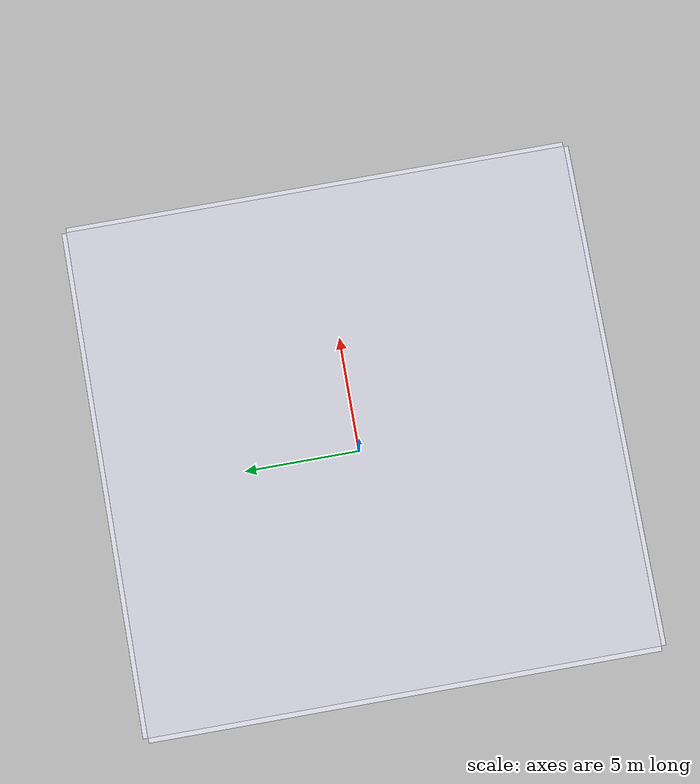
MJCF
<mujoco model="Stewart_only">
  <default>
    <joint limited="true" damping="0.01" armature="0.01" frictionloss="0.01" />
    <geom condim="4" contype="1" conaffinity="15" friction="0.9 0.2 0.2" solref="0.001 2" />
    <motor ctrllimited="true" />
    <equality solref="0.001 2" />
    <default class="visualgeom">
      <geom material="visualgeom" condim="1" contype="0" conaffinity="0" />
    </default>
  </default>

    <compiler angle="radian" meshdir="meshes" autolimits="true" />
    <option timestep="0.002" gravity="0 0 -9.81" wind="0 0 0" integrator="implicitfast"
        density="1.225"
        viscosity="1.8e-5" />

    <visual>
        <global realtime="1" />
        <quality shadowsize="16384" numslices="28" offsamples="4" />
        <headlight diffuse="1 1 1" specular="0.5 0.5 0.5" active="1" />
        <rgba fog="1 0 0 1" haze="1 1 1 1" />
    </visual>

  <asset>

     <!-- 地面纹理 -->
    <texture name="texplane" type="2d" builtin="checker" rgb1=".0 .0 .0" rgb2=".8 .8 .8" width="100" height="100" />
    <material name="matplane" reflectance="0.1" texture="texplane" texrepeat="20 20" texuniform="true" />

    <!-- 房间材质 -->
    <material name="wall_material" rgba="0.9 0.9 0.95 1" shininess="0.1" specular="0.1" />
    <material name="ceiling_material" rgba="0.85 0.85 0.9 1" shininess="0.1" specular="0.1" />
    <material name="window_material" rgba="0.6 0.8 1.0 0.4" shininess="0.8" specular="0.6" />
    <material name="furniture_material" rgba="0.6 0.4 0.2 1" shininess="0.3" specular="0.3" />

    <!-- 目标物体材质 -->
    <material name="red_target_material" rgba="1.0 0.0 0.0 1" shininess="0.3" specular="0.3" />

    <material name="default_material" rgba="0.7 0.7 0.7 1" />
    <mesh name="base_link.stl" file="base_link.stl" scale="0.001 0.001 0.001"/>
    <mesh name="X1bottom_1.stl" file="X1bottom_1.stl" scale="0.001 0.001 0.001"/>
    <mesh name="cylinder1_1.stl" file="cylinder1_1.stl" scale="0.001 0.001 0.001"/>
    <mesh name="rod1_1.stl" file="rod1_1.stl" scale="0.001 0.001 0.001"/>
    <mesh name="piston1_1.stl" file="piston1_1.stl" scale="0.001 0.001 0.001"/>
    <mesh name="X1top_1.stl" file="X1top_1.stl" scale="0.001 0.001 0.001"/>
    <mesh name="UJ1_1.stl" file="UJ1_1.stl" scale="0.001 0.001 0.001"/>
    <mesh name="TOP_1.stl" file="TOP_1.stl" scale="0.001 0.001 0.001"/>
    <mesh name="X6bottom_1.stl" file="X6bottom_1.stl" scale="0.001 0.001 0.001"/>
    <mesh name="cylinder6_1.stl" file="cylinder6_1.stl" scale="0.001 0.001 0.001"/>
    <mesh name="rod6_1.stl" file="rod6_1.stl" scale="0.001 0.001 0.001"/>
    <mesh name="piston6_1.stl" file="piston6_1.stl" scale="0.001 0.001 0.001"/>
    <mesh name="X6top_1.stl" file="X6top_1.stl" scale="0.001 0.001 0.001"/>
    <mesh name="UJ6_1.stl" file="UJ6_1.stl" scale="0.001 0.001 0.001"/>
    <mesh name="X5bottom_1.stl" file="X5bottom_1.stl" scale="0.001 0.001 0.001"/>
    <mesh name="cylinder5_1.stl" file="cylinder5_1.stl" scale="0.001 0.001 0.001"/>
    <mesh name="rod5_1.stl" file="rod5_1.stl" scale="0.001 0.001 0.001"/>
    <mesh name="piston5_1.stl" file="piston5_1.stl" scale="0.001 0.001 0.001"/>
    <mesh name="X5top_1.stl" file="X5top_1.stl" scale="0.001 0.001 0.001"/>
    <mesh name="UJ5_1.stl" file="UJ5_1.stl" scale="0.001 0.001 0.001"/>
    <mesh name="X2bottom_1.stl" file="X2bottom_1.stl" scale="0.001 0.001 0.001"/>
    <mesh name="cylinder2_1.stl" file="cylinder2_1.stl" scale="0.001 0.001 0.001"/>
    <mesh name="rod2_1.stl" file="rod2_1.stl" scale="0.001 0.001 0.001"/>
    <mesh name="piston2_1.stl" file="piston2_1.stl" scale="0.001 0.001 0.001"/>
    <mesh name="X2top_1.stl" file="X2top_1.stl" scale="0.001 0.001 0.001"/>
    <mesh name="UJ2_1.stl" file="UJ2_1.stl" scale="0.001 0.001 0.001"/>
    <mesh name="X4bottom_1.stl" file="X4bottom_1.stl" scale="0.001 0.001 0.001"/>
    <mesh name="cylinder4_1.stl" file="cylinder4_1.stl" scale="0.001 0.001 0.001"/>
    <mesh name="rod4_1.stl" file="rod4_1.stl" scale="0.001 0.001 0.001"/>
    <mesh name="piston4_1.stl" file="piston4_1.stl" scale="0.001 0.001 0.001"/>
    <mesh name="X4top_1.stl" file="X4top_1.stl" scale="0.001 0.001 0.001"/>
    <mesh name="UJ4_1.stl" file="UJ4_1.stl" scale="0.001 0.001 0.001"/>
    <mesh name="X3bottom_1.stl" file="X3bottom_1.stl" scale="0.001 0.001 0.001"/>
    <mesh name="cylinder3_1.stl" file="cylinder3_1.stl" scale="0.001 0.001 0.001"/>
    <mesh name="rod3_1.stl" file="rod3_1.stl" scale="0.001 0.001 0.001"/>
    <mesh name="piston3_1.stl" file="piston3_1.stl" scale="0.001 0.001 0.001"/>
    <mesh name="X3top_1.stl" file="X3top_1.stl" scale="0.001 0.001 0.001"/>
    <mesh name="UJ3_1.stl" file="UJ3_1.stl" scale="0.001 0.001 0.001"/>
  </asset>

  <worldbody>
    <!-- 房间光照系统 -->
    <light directional="true" diffuse="0.6 0.6 0.6" specular="0.2 0.2 0.2"
           pos="0 0 6.0" dir="0 0 -1" castshadow="true" />
    <light directional="true" diffuse="0.4 0.4 0.4" specular="0.1 0.1 0.1"
           pos="5 5 4.0" dir="-1 -1 -1" castshadow="false" />
    <light directional="true" diffuse="0.3 0.3 0.3" specular="0.1 0.1 0.1"
           pos="-5 -5 4.0" dir="1 1 -1" castshadow="false" />

    <!-- 地面 -->
    <geom name="ground" type="plane" pos="0 0 0" size="10 10 0.001"
          quat="1 0 0 0" material="matplane" condim="3" contype="1" conaffinity="65535" />

    <!-- 房间结构 -->
    <!-- 墙壁 -->
    <!-- 前墙 (Y=10) -->
    <geom name="wall_front" type="box" size="10 0.2 3" pos="0 10 3"
          material="wall_material" contype="2" conaffinity="1" />
    <!-- 后墙 (Y=-10) -->
    <geom name="wall_back" type="box" size="10 0.2 3" pos="0 -10 3"
          material="wall_material" contype="2" conaffinity="1" />
    <!-- 左墙 (X=-10) -->
    <geom name="wall_left" type="box" size="0.2 10 3" pos="-10 0 3"
          material="wall_material" contype="2" conaffinity="1" />
    <!-- 右墙 (X=10) -->
    <geom name="wall_right" type="box" size="0.2 10 3" pos="10 0 3"
          material="wall_material" contype="2" conaffinity="1" />

    <!-- 天花板 -->
    <geom name="ceiling" type="box" size="10 10 0.1" pos="0 0 6"
          material="ceiling_material" contype="2" conaffinity="1" />

        <!-- 随机目标物体 -->
    <body name="target_object" pos="0 0 4">
      <geom name="red_target" type="box" size="0.08 0.05 0.05"
            material="red_target_material" contype="4" conaffinity="4" />

    </body>

        <body name="base" pos="0.0 0.0 0.0" quat="1.0 0.0 0.0 0.0">
          <inertial pos="2.3255814076482495e-11 -1.1937212521199739e-11 0.013288962255547656" quat="1.0 0.0 0.0 0.0" mass="13.757667475145922" diaginertia="0.217974 0.217974 0.434077" />
          <geom pos="0 0 0" quat="1.0 0.0 0.0 0.0" material="default_material" type="mesh" mesh="base_link.stl" contype="2" conaffinity="1"/>
          <body name="X1bottom_1" pos="-0.160375 -0.15639 0.064756" quat="1.0 0.0 0.0 0.0">
            <joint name="r_xb1" type="hinge" range="-0.785398 0.785398" axis="-0.5 -0.866025 -0.0" />
            <inertial pos="0.01275003478154274 0.02208392696742542 -4.072401300903028e-07" quat="1.0 0.0 0.0 0.0" mass="0.015369342112821465" diaginertia="2e-06 2e-06 3e-06" />
            <geom pos="0.160375 0.15639 -0.064756" quat="1.0 0.0 0.0 0.0" material="default_material" type="mesh" mesh="X1bottom_1.stl" contype="0" conaffinity="0" />
            <body name="cylinder1_1" pos="0.032934 0.010431 -0.010949" quat="1.0 0.0 0.0 0.0">
              <joint name="r_xb_rod1" type="hinge" range="-0.785398 0.785398" axis="0.783838 -0.452549 -0.425202" />
              <inertial pos="0.02729482532372013 -0.016329820457659128 0.12825573678482122" quat="1.0 0.0 0.0 0.0" mass="1.0834595971642158" diaginertia="0.00397 0.004331 0.001152" />
              <geom pos="0.127441 0.145959 -0.053807" quat="1.0 0.0 0.0 0.0" material="default_material" type="mesh" mesh="cylinder1_1.stl" contype="0" conaffinity="0" />
              <body name="rod1_1" pos="0.067736 -0.040165 0.228176" quat="1.0 0.0 0.0 0.0">
                <joint name="s1" type="slide" range="0.0 0.19" axis="0.366326 -0.215903 0.905092" />
                <inertial pos="-0.0363119660977582 0.02140153438053846 -0.08971792919781321" quat="1.0 0.0 0.0 0.0" mass="0.2833716573537993" diaginertia="0.000826 0.000908 0.000184" />
                <geom pos="0.059705 0.186124 -0.281983" quat="1.0 0.0 0.0 0.0" material="default_material" type="mesh" mesh="rod1_1.stl" contype="0" conaffinity="0" />
                <body name="piston1_1" pos="0.000321 -0.000189 0.000791" quat="1.0 0.0 0.0 0.0">
                  <joint name="r_rod1" type="hinge" range="0.0 6.283185" axis="0.366326 -0.215903 0.905092" />
                  <inertial pos="0.003260719383217446 -0.00192086747489148 0.008055557047720485" quat="1.0 0.0 0.0 0.0" mass="0.08578443099201062" diaginertia="1.9e-05 2e-05 2.7e-05" />
                  <geom pos="0.059384 0.186313 -0.282774" quat="1.0 0.0 0.0 0.0" material="default_material" type="mesh" mesh="piston1_1.stl" contype="0" conaffinity="0" />
                  <body name="X1top_1" pos="0.036216 0.003685 0.030422" quat="1.0 0.0 0.0 0.0">
                    <joint name="r_rod_xt1" type="hinge" range="-0.785398 0.785398" axis="-0.845561 -0.483234 0.226959" />
                    <inertial pos="-0.021561342143433596 -0.012322044617543215 0.0057870217842545535" quat="1.0 0.0 0.0 0.0" mass="0.015369342112821583" diaginertia="2e-06 2e-06 4e-06" />
                    <geom pos="0.023168 0.182628 -0.313196" quat="1.0 0.0 0.0 0.0" material="default_material" type="mesh" mesh="X1top_1.stl" contype="0" conaffinity="0" />
                    <body name="UJ1_1" pos="-0.008779 -0.034675 0.005815" quat="1.0 0.0 0.0 0.0">
                      <joint name="r_xt1" type="hinge" range="0.0 6.283185" axis="0.496404 -0.868091 0.001097" />
                      <inertial pos="-0.012837420559777761 0.022361614937716018 0.030940336511158628" quat="1.0 0.0 0.0 0.0" mass="0.08446437141832064" diaginertia="1.9e-05 1.7e-05 2.8e-05" />
                      <geom pos="0.031947 0.217303 -0.319011" quat="1.0 0.0 0.0 0.0" material="default_material" type="mesh" mesh="UJ1_1.stl" contype="64" conaffinity="64" />
                      <body name="TOP_1" pos="-0.012852 0.022363 0.039728" quat="1.0 0.0 0.0 0.0">
                        <inertial pos="0.04328903595379507 0.19482493931376896 0.010581548215173764" quat="1.0 0.0 0.0 0.0" mass="13.182708498536908" diaginertia="0.206266 0.206265 0.411168" />
                        <geom pos="0.044799 0.19494 -0.358739" quat="1.0 0.0 0.0 0.0" material="default_material" type="mesh" mesh="TOP_1.stl" contype="64" conaffinity="64" />
                        <camera name="camera" pos="0.03295 0.1973 0" euler="0 3.1415926 0" mode="fixed" fovy="45"/>
                      </body>
                    </body>
                  </body>
                </body>
              </body>
            </body>
          </body>
          <body name="X2bottom_1" pos="-0.202875 -0.082778 0.064756" quat="1.0 0.0 0.0 0.0">
            <joint name="r_xb2" type="hinge" range="-0.785398 0.785398" axis="-0.5 -0.866025 0.0" />
            <inertial pos="0.012750057742457827 0.022084073032612075 -4.07240119418284e-07" quat="1.0 0.0 0.0 0.0" mass="0.01536934211282146" diaginertia="2e-06 2e-06 4e-06" />
            <geom name="X2bottom_1_visual_0" pos="0.202875 0.082778 -0.064756" quat="1.0 0.0 0.0 0.0" material="default_material" type="mesh" mesh="X2bottom_1.stl" contype="0" conaffinity="0" />
            <body name="cylinder2_1" pos="0.034413 0.009577 0.006111" quat="1.0 0.0 0.0 0.0">
              <joint name="r_xb_rod2" type="hinge" range="-0.785398 0.785398" axis="0.841279 -0.485713 0.237344" />
              <inertial pos="-0.022200241098937062 0.0686570498281845 0.11070095070557585" quat="1.0 0.0 0.0 0.0" mass="1.083459599703058" diaginertia="0.004522 0.003751 0.001181" />
              <geom name="cylinder2_1_visual_0" pos="0.168462 0.073201 -0.070867" quat="1.0 0.0 0.0 0.0" material="default_material" type="mesh" mesh="cylinder2_1.stl" contype="0" conaffinity="0" />
              <body name="rod2_1" pos="-0.022658 0.116484 0.210199" quat="1.0 0.0 0.0 0.0">
                <joint name="s2" type="slide" range="0.0 0.19" axis="-0.004145 0.433229 0.901274" />
                <inertial pos="0.00040765407980625223 -0.0425838018149945 -0.08859030306524057" quat="1.0 0.0 0.0 0.0" mass="0.2833716573537998" diaginertia="0.000952 0.000776 0.00019" />
                <geom name="rod2_1_visual_0" pos="0.19112 -0.043283 -0.281066" quat="1.0 0.0 0.0 0.0" material="default_material" type="mesh" mesh="rod2_1.stl" contype="0" conaffinity="0" />
                <body name="piston2_1" pos="-7e-06 0.000739 0.001537" quat="1.0 0.0 0.0 0.0">
                  <joint name="r_rod2" type="hinge" range="0.0 6.283185" axis="-0.004145 0.433229 0.901274" />
                  <inertial pos="-3.6747621563193444e-05 0.00385505605944253 0.008022004528809967" quat="1.0 0.0 0.0 0.0" mass="0.08578414622058635" diaginertia="2e-05 1.9e-05 2.6e-05" />
                  <geom name="piston2_1_visual_0" pos="0.191127 -0.044022 -0.282603" quat="1.0 0.0 0.0 0.0" material="default_material" type="mesh" mesh="piston2_1.stl" contype="0" conaffinity="0" />
                  <body name="X2top_1" pos="-5.1e-05 0.040314 0.025009" quat="1.0 0.0 0.0 0.0">
                    <joint name="r_rod_xt2" type="hinge" range="-0.785398 0.785398" axis="-0.004501 -0.901281 0.433212" />
                    <inertial pos="-0.00011466195212661567 -0.022982312625086758 0.011047143465836295" quat="1.0 0.0 0.0 0.0" mass="0.015369342112821335" diaginertia="2e-06 2e-06 3e-06" />
                    <geom name="X2top_1_visual_0" pos="0.191178 -0.084336 -0.307612" quat="1.0 0.0 0.0 0.0" material="default_material" type="mesh" mesh="X2top_1.stl" contype="0" conaffinity="0" />
                    <body name="UJ2_1" pos="-0.025864 -0.022876 0.011002" quat="1.0 0.0 0.0 0.0">
                      <joint name="r_xt2" type="hinge" range="0.0 6.283185" axis="-0.99999 0.004146 -0.001764" />
                      <inertial pos="0.025693864744190664 -9.844998390469428e-05 0.031013457675736433" quat="1.0 0.0 0.0 0.0" mass="0.08446437149882718" diaginertia="1.7e-05 1.9e-05 2.8e-05" />
                      <geom name="UJ2_1_visual_0" pos="0.217042 -0.06146 -0.318614" quat="1.0 0.0 0.0 0.0" material="default_material" type="mesh" mesh="UJ2_1.stl" contype="64" conaffinity="64" />
                    </body>
                  </body>
                </body>
              </body>
            </body>
          </body>
          <body name="X3bottom_1" pos="-0.02975 0.172916 0.064756" quat="1.0 0.0 0.0 0.0">
            <joint name="r_xb3" type="hinge" range="-0.785398 0.785398" axis="0.5 -0.866025 0.0" />
            <inertial pos="-0.01274998851950876 0.02208400662826518 -4.072401302013251e-07" quat="1.0 0.0 0.0 0.0" mass="0.015369342112821387" diaginertia="2e-06 2e-06 3e-06" />
            <geom name="X3bottom_1_visual_0" pos="0.02975 -0.172916 -0.064756" quat="1.0 0.0 0.0 0.0" material="default_material" type="mesh" mesh="X3bottom_1.stl" contype="0" conaffinity="0" />
            <body name="cylinder3_1" pos="0.007354 0.033691 0.011142" quat="1.0 0.0 0.0 0.0">
              <joint name="r_xb_rod3" type="hinge" range="-0.785398 0.785398" axis="0.78075 0.450766 0.43271" />
              <inertial pos="-0.06886834961262803 -0.039309713367164906 0.10570290713184599" quat="1.0 0.0 0.0 0.0" mass="1.0834597856232793" diaginertia="0.00394 0.004335 0.001178" />
              <geom name="cylinder3_1_visual_0" pos="0.022396 -0.206607 -0.075898" quat="1.0 0.0 0.0 0.0" material="default_material" type="mesh" mesh="cylinder3_1.stl" contype="0" conaffinity="0" />
              <body name="rod3_1" pos="-0.110405 -0.062906 0.20523" quat="1.0 0.0 0.0 0.0">
                <joint name="s3" type="slide" range="0.0 0.19" axis="-0.376245 -0.213742 0.901529" />
                <inertial pos="0.03698945499219167 0.021013065163081268 -0.08863127807602841" quat="1.0 0.0 0.0 0.0" mass="0.2833716573537997" diaginertia="0.000819 0.000909 0.00019" />
                <geom name="rod3_1_visual_0" pos="0.132801 -0.143701 -0.281128" quat="1.0 0.0 0.0 0.0" material="default_material" type="mesh" mesh="rod3_1.stl" contype="0" conaffinity="0" />
                <body name="piston3_1" pos="-0.000635 -0.000361 0.001522" quat="1.0 0.0 0.0 0.0">
                  <joint name="r_rod3" type="hinge" range="0.0 6.283185" axis="-0.376245 -0.213742 0.901529" />
                  <inertial pos="-0.003348642128974705 -0.001903364795347251 0.008023117770736776" quat="1.0 0.0 0.0 0.0" mass="0.08578406699699544" diaginertia="2.1e-05 1.8e-05 2.7e-05" />
                  <geom name="piston3_1_visual_0" pos="0.133436 -0.14334 -0.28265" quat="1.0 0.0 0.0 0.0" material="default_material" type="mesh" mesh="piston3_1.stl" contype="0" conaffinity="0" />
                  <body name="X3top_1" pos="-0.014959 0.016252 0.041985" quat="1.0 0.0 0.0 0.0">
                    <joint name="r_rod_xt3" type="hinge" range="-0.785398 0.785398" axis="-0.003623 -0.97268 -0.232123" />
                    <inertial pos="-9.28858073003247e-05 -0.024803007598659416 -0.0059191862387001914" quat="1.0 0.0 0.0 0.0" mass="0.015369342112821555" diaginertia="2e-06 2e-06 4e-06" />
                    <geom name="X3top_1_visual_0" pos="0.148395 -0.159592 -0.324635" quat="1.0 0.0 0.0 0.0" material="default_material" type="mesh" mesh="X3top_1.stl" contype="0" conaffinity="0" />
                    <body name="UJ3_1" pos="0.025657 -0.02491 -0.005874" quat="1.0 0.0 0.0 0.0">
                      <joint name="r_xt3" type="hinge" range="0.0 6.283185" axis="0.99999 -0.004146 0.001764" />
                      <inertial pos="-0.025803583885874712 0.00011496804616903389 0.030923131071302012" quat="1.0 0.0 0.0 0.0" mass="0.08446437149876586" diaginertia="1.7e-05 1.9e-05 2.8e-05" />
                      <geom name="UJ3_1_visual_0" pos="0.122738 -0.134682 -0.318761" quat="1.0 0.0 0.0 0.0" material="default_material" type="mesh" mesh="UJ3_1.stl" contype="64" conaffinity="64" />
                    </body>
                  </body>
                </body>
              </body>
            </body>
          </body>
          <body name="X4bottom_1" pos="0.05525 0.172916 0.064756" quat="1.0 0.0 0.0 0.0">
            <joint name="r_xb4" type="hinge" range="-0.785398 0.785398" axis="0.5 -0.866025 -0.0" />
            <inertial pos="-0.012750011480423325 0.022083993371774968 -4.0724011886317246e-07" quat="1.0 0.0 0.0 0.0" mass="0.01536934211282148" diaginertia="2e-06 2e-06 4e-06" />
            <geom name="X4bottom_1_visual_0" pos="-0.05525 -0.172916 -0.064756" quat="1.0 0.0 0.0 0.0" material="default_material" type="mesh" mesh="X4bottom_1.stl" contype="0" conaffinity="0" />
            <body name="cylinder4_1" pos="0.008963 0.03462 -0.00587" quat="1.0 0.0 0.0 0.0">
              <joint name="r_xb_rod4" type="hinge" range="-0.785398 0.785398" axis="0.843228 0.486838 -0.227936" />
              <inertial pos="0.026240778221358257 -0.04079286613222788 0.12291755682136629" quat="1.0 0.0 0.0 0.0" mass="1.0834593902746585" diaginertia="0.003958 0.004327 0.001167" />
              <geom name="cylinder4_1_visual_0" pos="-0.064213 -0.207536 -0.058886" quat="1.0 0.0 0.0 0.0" material="default_material" type="mesh" mesh="cylinder4_1.stl" contype="0" conaffinity="0" />
              <body name="rod4_1" pos="0.067087 -0.064862 0.222617" quat="1.0 0.0 0.0 0.0">
                <joint name="s4" type="slide" range="0.0 0.19" axis="0.36999 -0.218018 0.903092" />
                <inertial pos="-0.03634169091616525 0.02141475285206132 -0.08870439058730761" quat="1.0 0.0 0.0 0.0" mass="0.28337165735379954" diaginertia="0.000823 0.000907 0.000187" />
                <geom name="rod4_1_visual_0" pos="-0.1313 -0.142674 -0.281503" quat="1.0 0.0 0.0 0.0" material="default_material" type="mesh" mesh="rod4_1.stl" contype="0" conaffinity="0" />
                <body name="piston4_1" pos="0.000657 -0.000387 0.001605" quat="1.0 0.0 0.0 0.0">
                  <joint name="r_rod4" type="hinge" range="0.0 6.283185" axis="0.36999 -0.218018 0.903092" />
                  <inertial pos="0.0032926577328955264 -0.0019400363790381403 0.008037838079846149" quat="1.0 0.0 0.0 0.0" mass="0.08578412180440002" diaginertia="1.9e-05 2e-05 2.6e-05" />
                  <geom name="piston4_1_visual_0" pos="-0.131957 -0.142287 -0.283108" quat="1.0 0.0 0.0 0.0" material="default_material" type="mesh" mesh="piston4_1.stl" contype="0" conaffinity="0" />
                  <body name="X4top_1" pos="0.034701 -0.020313 0.025178" quat="1.0 0.0 0.0 0.0">
                    <joint name="r_rod_xt4" type="hinge" range="-0.785398 0.785398" axis="-0.780368 0.454538 0.429443" />
                    <inertial pos="-0.019898963252462376 0.01159097769330164 0.010950537929455939" quat="1.0 0.0 0.0 0.0" mass="0.015369342112821675" diaginertia="2e-06 2e-06 3e-06" />
                    <geom name="X4top_1_visual_0" pos="-0.166658 -0.121974 -0.308286" quat="1.0 0.0 0.0 0.0" material="default_material" type="mesh" mesh="X4top_1.stl" contype="0" conaffinity="0" />
                    <body name="UJ4_1" pos="-0.006932 0.033838 0.010968" quat="1.0 0.0 0.0 0.0">
                      <joint name="r_xt4" type="hinge" range="0.0 6.283185" axis="0.503586 0.863945 0.000667" />
                      <inertial pos="-0.013021154103656923 -0.022238306259387025 0.030950854232405622" quat="1.0 0.0 0.0 0.0" mass="0.08446437135502799" diaginertia="1.9e-05 1.7e-05 2.8e-05" />
                      <geom name="UJ4_1_visual_0" pos="-0.159726 -0.155812 -0.319254" quat="1.0 0.0 0.0 0.0" material="default_material" type="mesh" mesh="UJ4_1.stl" contype="64" conaffinity="64" />
                    </body>
                  </body>
                </body>
              </body>
            </body>
          </body>
          <body name="X5bottom_1" pos="0.215625 -0.060694 0.064756" quat="1.0 0.0 0.0 0.0">
            <joint name="r_xb5" type="hinge" range="-0.785398 0.785398" axis="1.0 -0.0 -0.0" />
            <inertial pos="-0.025500046262034837 6.640431129967261e-08 -4.072401355581512e-07" quat="1.0 0.0 0.0 0.0" mass="0.015369342112821526" diaginertia="2e-06 2e-06 3e-06" />
            <geom name="X5bottom_1_visual_0" pos="-0.215625 0.060694 -0.064756" quat="1.0 0.0 0.0 0.0" material="default_material" type="mesh" mesh="X5bottom_1.stl" contype="0" conaffinity="0" />
            <body name="cylinder5_1" pos="-0.0255 -0.023275 0.011014" quat="1.0 0.0 0.0 0.0">
              <joint name="r_xb_rod5" type="hinge" range="-0.785398 0.785398" axis="-0.0 -0.903898 0.427748" />
              <inertial pos="-0.0005391942218705703 0.07871427363633557 0.1061369773985035" quat="1.0 0.0 0.0 0.0" mass="1.0834593359661664" diaginertia="0.004524 0.003769 0.001161" />
              <geom name="cylinder5_1_visual_0" pos="-0.190125 0.083969 -0.07577" quat="1.0 0.0 0.0 0.0" material="default_material" type="mesh" mesh="cylinder5_1.stl" contype="0" conaffinity="0" />
              <body name="rod5_1" pos="-0.000998 0.125936 0.205924" quat="1.0 0.0 0.0 0.0">
                <joint name="s5" type="slide" range="0.0 0.19" axis="-0.00416 0.427745 0.90389" />
                <inertial pos="0.00040876764670991217 -0.04207635461802559 -0.0889138885284477" quat="1.0 0.0 0.0 0.0" mass="0.28337165735379943" diaginertia="0.000952 0.00078 0.000186" />
                <geom name="rod5_1_visual_0" pos="-0.189127 -0.041967 -0.281694" quat="1.0 0.0 0.0 0.0" material="default_material" type="mesh" mesh="rod5_1.stl" contype="0" conaffinity="0" />
                <body name="piston5_1" pos="-7e-06 0.000698 0.001475" quat="1.0 0.0 0.0 0.0">
                  <joint name="r_rod5" type="hinge" range="0.0 6.283185" axis="-0.00416 0.427745 0.90389" />
                  <inertial pos="-3.796842945222312e-05 0.003807538312228631 0.00804468407875164" quat="1.0 0.0 0.0 0.0" mass="0.08578423958035213" diaginertia="1.8e-05 2.1e-05 2.7e-05" />
                  <geom name="piston5_1_visual_0" pos="-0.18912 -0.042665 -0.283169" quat="1.0 0.0 0.0 0.0" material="default_material" type="mesh" mesh="piston5_1.stl" contype="0" conaffinity="0" />
                  <body name="X5top_1" pos="0.021242 0.004629 0.042167" quat="1.0 0.0 0.0 0.0">
                    <joint name="r_rod_xt5" type="hinge" range="-0.785398 0.785398" axis="-0.83956 0.489554 -0.235533" />
                    <inertial pos="-0.021408625059915254 0.012483273926971863 -0.00600622023844799" quat="1.0 0.0 0.0 0.0" mass="0.015369342112821502" diaginertia="2e-06 2e-06 4e-06" />
                    <geom name="X5top_1_visual_0" pos="-0.210362 -0.047294 -0.325336" quat="1.0 0.0 0.0 0.0" material="default_material" type="mesh" mesh="X5top_1.stl" contype="0" conaffinity="0" />
                    <body name="UJ5_1" pos="-0.008441 0.03473 -0.005989" quat="1.0 0.0 0.0 0.0">
                      <joint name="r_xt5" type="hinge" range="0.0 6.283185" axis="0.503586 0.863945 0.000667" />
                      <inertial pos="-0.013022605591247183 -0.022239603834112852 0.030951095080068047" quat="1.0 0.0 0.0 0.0" mass="0.08446437135496666" diaginertia="1.9e-05 1.7e-05 2.8e-05" />
                      <geom name="UJ5_1_visual_0" pos="-0.201921 -0.082024 -0.319347" quat="1.0 0.0 0.0 0.0" material="default_material" type="mesh" mesh="UJ5_1.stl" contype="64" conaffinity="64" />
                    </body>
                  </body>
                </body>
              </body>
            </body>
          </body>
          <body name="X6bottom_1" pos="0.173125 -0.134306 0.064756" quat="1.0 0.0 0.0 0.0">
            <joint name="r_xb6" type="hinge" range="-0.785398 0.785398" axis="1.0 -0.0 0.0" />
            <inertial pos="-0.025500046262033477 -6.640439273453147e-08 -4.0724012444204316e-07" quat="1.0 0.0 0.0 0.0" mass="0.015369342112821434" diaginertia="2e-06 2e-06 4e-06" />
            <geom name="X6bottom_1_visual_0" pos="-0.173125 0.134306 -0.064756" quat="1.0 0.0 0.0 0.0" material="default_material" type="mesh" mesh="X6bottom_1.stl" contype="0" conaffinity="0" />
            <body name="cylinder6_1" pos="-0.0255 0.025035 0.006026" quat="1.0 0.0 0.0 0.0">
              <joint name="r_xb_rod6" type="hinge" range="-0.785398 0.785398" axis="0.0 0.972225 0.234048" />
              <inertial pos="-0.04936437063232299 -0.05308323327299884 0.11048411160322401" quat="1.0 0.0 0.0 0.0" mass="1.083459541527402" diaginertia="0.003927 0.004328 0.001198" />
              <geom name="cylinder6_1_visual_0" pos="-0.147625 0.109271 -0.070782" quat="1.0 0.0 0.0 0.0" material="default_material" type="mesh" mesh="cylinder6_1.stl" contype="0" conaffinity="0" />
              <body name="rod6_1" pos="-0.091412 -0.076974 0.209726" quat="1.0 0.0 0.0 0.0">
                <joint name="s6" type="slide" range="0.0 0.19" axis="-0.380874 -0.216407 0.898945" />
                <inertial pos="0.037383047951974016 0.021240492770698255 -0.08823245154948317" quat="1.0 0.0 0.0 0.0" mass="0.2833716573537994" diaginertia="0.000816 0.000908 0.000194" />
                <geom name="rod6_1_visual_0" pos="-0.056213 0.186245 -0.280508" quat="1.0 0.0 0.0 0.0" material="default_material" type="mesh" mesh="rod6_1.stl" contype="0" conaffinity="0" />
                <body name="piston6_1" pos="-0.000704 -0.0004 0.001662" quat="1.0 0.0 0.0 0.0">
                  <joint name="r_rod6" type="hinge" range="0.0 6.283185" axis="-0.380874 -0.216407 0.898945" />
                  <inertial pos="-0.0033895159992465007 -0.0019258741237710708 0.008001250404574778" quat="1.0 0.0 0.0 0.0" mass="0.08578421036573615" diaginertia="1.9e-05 2e-05 2.6e-05" />
                  <geom name="piston6_1_visual_0" pos="-0.055509 0.186645 -0.28217" quat="1.0 0.0 0.0 0.0" material="default_material" type="mesh" mesh="piston6_1.stl" contype="0" conaffinity="0" />
                  <body name="X6top_1" pos="0.004656 0.002732 0.047133" quat="1.0 0.0 0.0 0.0">
                    <joint name="r_rod_xt6" type="hinge" range="-0.785398 0.785398" axis="-0.780129 -0.446658 -0.438059" />
                    <inertial pos="-0.019893465178586138 -0.011389699074627252 -0.011170064502357191" quat="1.0 0.0 0.0 0.0" mass="0.015369342112822157" diaginertia="2e-06 2e-06 3e-06" />
                    <geom name="X6top_1_visual_0" pos="-0.060165 0.183913 -0.329303" quat="1.0 0.0 0.0 0.0" material="default_material" type="mesh" mesh="X6top_1.stl" contype="0" conaffinity="0" />
                    <body name="UJ6_1" pos="-0.007111 -0.033743 -0.011142" quat="1.0 0.0 0.0 0.0">
                      <joint name="r_xt6" type="hinge" range="0.0 6.283185" axis="0.496404 -0.868091 0.001097" />
                      <inertial pos="-0.012837553348221412 0.022360664031001204 0.03148874152476355" quat="1.0 0.0 0.0 0.0" mass="0.089765809021081" diaginertia="2e-05 1.9e-05 3e-05" />
                      <geom name="UJ6_1_visual_0" pos="-0.053054 0.217656 -0.318161" quat="1.0 0.0 0.0 0.0" material="default_material" type="mesh" mesh="UJ6_1.stl" contype="64" conaffinity="64" />
                    </body>
                  </body>
                </body>
              </body>
            </body>
          </body>
        </body>

  </worldbody>
  <equality>
    <weld name="rigid2" body1="UJ2_1" body2="TOP_1" relpose="0.169691815 -0.2580476 0.04 1 0 0 0"/>
    <weld name="rigid3" body1="UJ3_1" body2="TOP_1" relpose="0.08078585061 -0.32854378 0.04 1 0 0 0"/>
    <weld name="rigid4" body1="UJ4_1" body2="TOP_1" relpose="-0.208484475 -0.3507224248 0.04 1 0 0 0"/>
    <weld name="rigid5" body1="UJ5_1" body2="TOP_1" relpose="-0.242636273 -0.2759510036 0.038 1 0 0 0"/>
    <weld name="rigid6" body1="UJ6_1" body2="TOP_1" relpose="-0.099102147 0.019884 0.04 1 0 0 0"/>
  </equality>

<actuator>
    <!-- 增益足够大才会稳定，TODO:为什么？s5存在问题，与TOP分离 -->
    <position kp="10000.0" kv="0.1" name="s1_trans" joint="s1" ctrlrange="-0.0 0.19"/>
    <position kp="10000.0" kv="0.1" name="s2_trans" joint="s2" ctrlrange="-0.0 0.19"/>
    <position kp="10000.0" kv="0.1" name="s3_trans" joint="s3" ctrlrange="-0.0 0.19"/>
    <position kp="10000.0" kv="0.1" name="s4_trans" joint="s4" ctrlrange="-0.0 0.19"/>
    <position kp="10000.0" kv="0.1" name="s5_trans" joint="s5" ctrlrange="-0.0 0.19"/>
    <position kp="10000.0" kv="0.1" name="s6_trans" joint="s6" ctrlrange="-0.0 0.19"/>
</actuator>
</mujoco>
